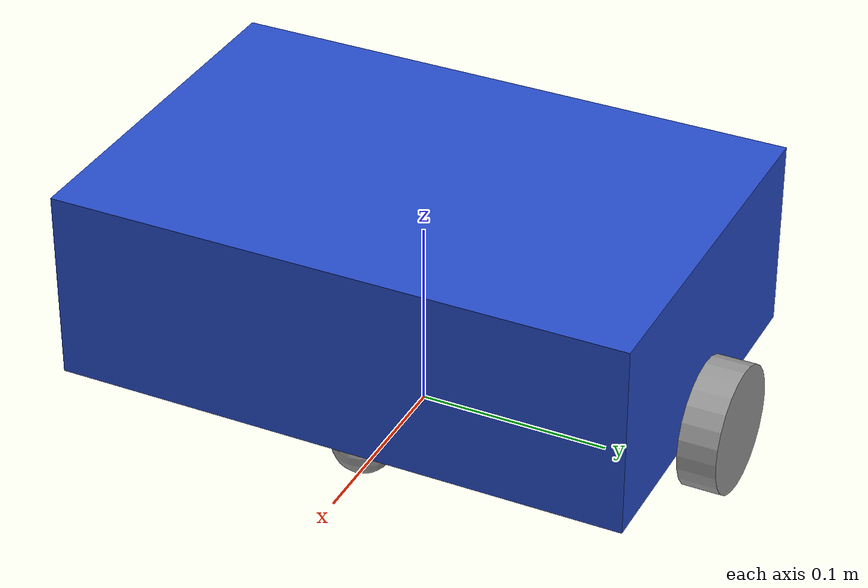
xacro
<?xml version="1.0"?>
<robot name="my_robot" xmlns:xacro="http://www.ros.org/wiki/xacro">

    <xacro:include filename="common_properties.xacro" />
    <xacro:include filename="mobile_base_homemade.xacro" />
    <!--xacro:include filename="mobile_base_printed.xacro" /-->
    <xacro:include filename="robot_ros2_control.xacro" />

</robot>

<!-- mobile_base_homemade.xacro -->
<robot xmlns:xacro="http://www.ros.org/wiki/xacro">

  <xacro:property name="base_length" value="0.20" />
  <xacro:property name="base_width"  value="0.30" />
  <xacro:property name="base_height" value="0.10" />
  <xacro:property name="wheel_radius" value="0.033" />
  <xacro:property name="wheel_length" value="0.02" />

  <link name="base_footprint" />

  <!-- BASE LINK -->
  <link name="base_link">
    <visual>
      <geometry>
        <box size="${base_length} ${base_width} ${base_height}" />
      </geometry>
      <origin xyz="0 0 ${base_height / 2.0}" rpy="0 0 0" />
      <material name="blue" />
    </visual>

    <collision>
      <geometry>
        <box size="${base_length} ${base_width} ${base_height}" />
      </geometry>
      <origin xyz="0 0 ${base_height / 2.0}" rpy="0 0 0" />
    </collision>

    <!-- Approximate inertial for a solid box, mass ~ 2.0 kg -->
    <inertial>
      <mass value="2.0"/>
      <origin xyz="0 0 ${base_height / 2.0}" rpy="0 0 0"/>
      <!-- Ixx = 1/12 m (h^2 + w^2), etc. Rough values -->
      <inertia ixx="0.01" ixy="0.0" ixz="0.0"
               iyy="0.01" iyz="0.0"
               izz="0.01"/>
    </inertial>
  </link>

  <!-- WHEEL MACRO -->
  <xacro:macro name="wheel_link" params="prefix">
    <link name="${prefix}_wheel_link">
      <visual>
        <geometry>
          <cylinder radius="${wheel_radius}" length="${wheel_length}" />
        </geometry>
        <origin xyz="0 0 0" rpy="${pi / 2.0} 0 0" />
        <material name="grey" />
      </visual>

      <collision>
        <geometry>
          <cylinder radius="${wheel_radius}" length="${wheel_length}" />
        </geometry>
        <origin xyz="0 0 0" rpy="${pi / 2.0} 0 0" />
      </collision>

      <!-- Approximate inertial for a wheel, mass ~ 0.1 kg -->
      <inertial>
        <mass value="0.1"/>
        <origin xyz="0 0 0" rpy="0 0 0"/>
        <!-- Simple diagonal inertia; fine for small wheels -->
        <inertia ixx="0.0001" ixy="0.0" ixz="0.0"
                 iyy="0.0001" iyz="0.0"
                 izz="0.0001"/>
      </inertial>
    </link>
  </xacro:macro>

  <xacro:wheel_link prefix="right" />
  <xacro:wheel_link prefix="left" />

  <!-- FRONT CASTER WHEEL -->
  <link name="front_caster_wheel_link">
    <visual>
      <geometry>
        <sphere radius="${wheel_radius / 2.0}" />
      </geometry>
      <origin xyz="0 0 0" rpy="0 0 0" />
      <material name="grey" />
    </visual>

    <collision>
      <geometry>
        <sphere radius="${wheel_radius / 2.0}" />
      </geometry>
      <origin xyz="0 0 0" rpy="0 0 0" />
    </collision>

    <!-- Approximate inertial for a small caster, mass ~ 0.05 kg -->
    <inertial>
      <mass value="0.05"/>
      <origin xyz="0 0 0" rpy="0 0 0"/>
      <inertia ixx="0.00005" ixy="0.0" ixz="0.0"
               iyy="0.00005" iyz="0.0"
               izz="0.00005"/>
    </inertial>
  </link>

  <!-- REAR CASTER WHEEL -->
  <link name="rear_caster_wheel_link">
    <visual>
      <geometry>
        <sphere radius="${wheel_radius / 2.0}" />
      </geometry>
      <origin xyz="0 0 0" rpy="0 0 0" />
      <material name="grey" />
    </visual>

    <collision>
      <geometry>
        <sphere radius="${wheel_radius / 2.0}" />
      </geometry>
      <origin xyz="0 0 0" rpy="0 0 0" />
    </collision>

    <!-- Approximate inertial for a small caster, mass ~ 0.05 kg -->
    <inertial>
      <mass value="0.05"/>
      <origin xyz="0 0 0" rpy="0 0 0"/>
      <inertia ixx="0.00005" ixy="0.0" ixz="0.0"
               iyy="0.00005" iyz="0.0"
               izz="0.00005"/>
    </inertial>
  </link>

  <!-- JOINTS -->
  <joint name="base_joint" type="fixed">
    <parent link="base_footprint" />
    <child link="base_link" />
    <origin xyz="0 0 ${wheel_radius}" rpy="0 0 0"/>
  </joint>

  <joint name="right_wheel_joint" type="continuous">
    <parent link="base_link" />
    <child link="right_wheel_link" />
    <origin xyz="0 ${-(base_width + wheel_length) / 2.0} 0" rpy="0 0 0" />
    <axis xyz="0 1 0" />
  </joint>

  <joint name="left_wheel_joint" type="continuous">
    <parent link="base_link" />
    <child link="left_wheel_link" />
    <origin xyz="0 ${(base_width + wheel_length) / 2.0} 0" rpy="0 0 0" />
    <axis xyz="0 1 0" />
  </joint>

  <joint name="front_caster_wheel_joint" type="fixed">
    <parent link="base_link" />
    <child link="front_caster_wheel_link" />
    <origin xyz="${base_length / 3.0} 0 ${-wheel_radius / 2.0}" rpy="0 0 0" />
  </joint>

  <joint name="rear_caster_wheel_joint" type="fixed">
    <parent link="base_link" />
    <child link="rear_caster_wheel_link" />
    <origin xyz="${-base_length / 3.0} 0 ${-wheel_radius / 2.0}" rpy="0 0 0" />
  </joint>

</robot>
